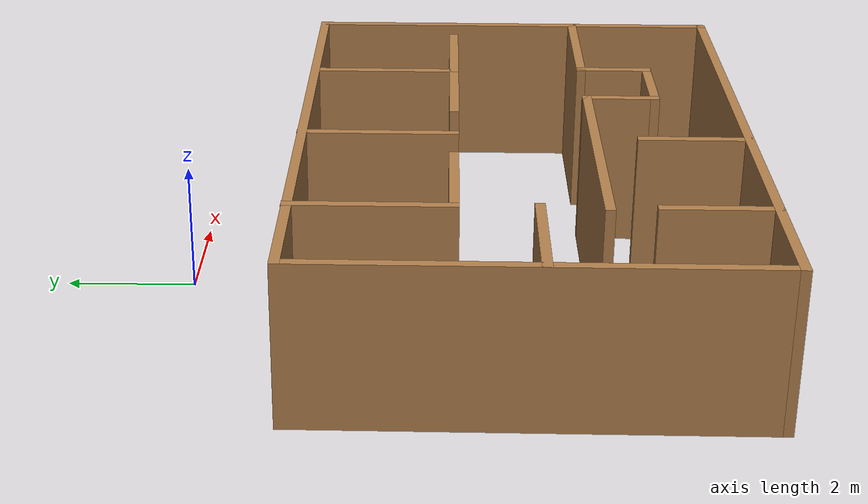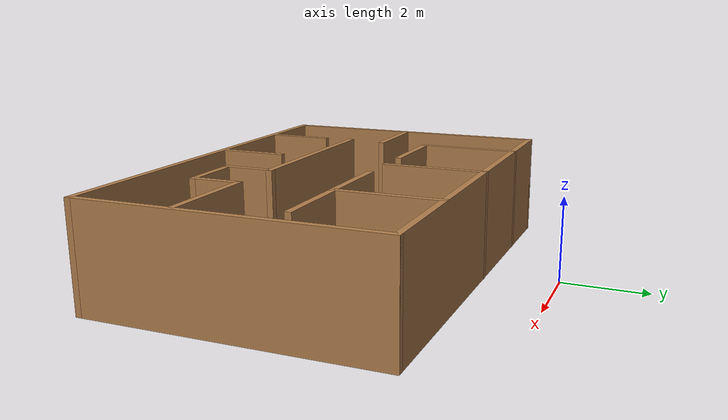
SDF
<?xml version='1.0'?>
<sdf version='1.6'>
	<model name='My_room'>
		<pose frame=''>0.775 -5.15122 0 0 -0 0</pose>
		<link name='Wall_0'>
			<collision name='Wall_0_Collision'>
				<geometry>
					<box>
						<size>10 0.15 2.5</size>
					</box>
				</geometry>
				<pose frame=''>0 0 1.25 0 -0 0</pose>
			</collision>
			<visual name='Wall_0_Visual'>
				<pose frame=''>0 0 1.25 0 -0 0</pose>
				<geometry>
					<box>
						<size>10 0.15 2.5</size>
					</box>
				</geometry>
				<material>
					<script>
						<uri>file://media/materials/scripts/gazebo.material</uri>
						<name>Gazebo/Wood</name>
					</script>
					<ambient>1 1 1 1</ambient>
				</material>
				<meta>
					<layer>0</layer>
				</meta>
			</visual>
			<pose frame=''>0 3.42122 0 0 -0 0</pose>
		</link>
		<link name='Wall_11'>
			<collision name='Wall_11_Collision'>
				<geometry>
					<box>
						<size>2 0.15 2.5</size>
					</box>
				</geometry>
				<pose frame=''>0 0 1.25 0 -0 0</pose>
			</collision>
			<visual name='Wall_11_Visual'>
				<pose frame=''>0 0 1.25 0 -0 0</pose>
				<geometry>
					<box>
						<size>2 0.15 2.5</size>
					</box>
				</geometry>
				<material>
					<script>
						<uri>file://media/materials/scripts/gazebo.material</uri>
						<name>Gazebo/Wood</name>
					</script>
					<ambient>1 1 1 1</ambient>
				</material>
				<meta>
					<layer>0</layer>
				</meta>
			</visual>
			<pose frame=''>1.50689 1.06878 0 0 -0 0</pose>
		</link>
		<link name='Wall_12'>
			<collision name='Wall_12_Collision'>
				<geometry>
					<box>
						<size>2.5 0.15 2.5</size>
					</box>
				</geometry>
				<pose frame=''>0 0 1.25 0 -0 0</pose>
			</collision>
			<visual name='Wall_12_Visual'>
				<pose frame=''>0 0 1.25 0 -0 0</pose>
				<geometry>
					<box>
						<size>2.5 0.15 2.5</size>
					</box>
				</geometry>
				<material>
					<script>
						<uri>file://media/materials/scripts/gazebo.material</uri>
						<name>Gazebo/Wood</name>
					</script>
					<ambient>1 1 1 1</ambient>
				</material>
				<meta>
					<layer>0</layer>
				</meta>
			</visual>
			<pose frame=''>2.43189 2.24378 0 0 -0 1.5708</pose>
		</link>
		<link name='Wall_16'>
			<collision name='Wall_16_Collision'>
				<geometry>
					<box>
						<size>2 0.15 2.5</size>
					</box>
				</geometry>
				<pose frame=''>0 0 1.25 0 -0 0</pose>
			</collision>
			<visual name='Wall_16_Visual'>
				<pose frame=''>0 0 1.25 0 -0 0</pose>
				<geometry>
					<box>
						<size>2 0.15 2.5</size>
					</box>
				</geometry>
				<material>
					<script>
						<uri>file://media/materials/scripts/gazebo.material</uri>
						<name>Gazebo/Wood</name>
					</script>
					<ambient>1 1 1 1</ambient>
				</material>
				<meta>
					<layer>0</layer>
				</meta>
			</visual>
			<pose frame=''>3.35689 1.06878 0 0 -0 0</pose>
		</link>
		<link name='Wall_18'>
			<collision name='Wall_18_Collision'>
				<geometry>
					<box>
						<size>2.5 0.15 2.5</size>
					</box>
				</geometry>
				<pose frame=''>0 0 1.25 0 -0 0</pose>
			</collision>
			<visual name='Wall_18_Visual'>
				<pose frame=''>0 0 1.25 0 -0 0</pose>
				<geometry>
					<box>
						<size>2.5 0.15 2.5</size>
					</box>
				</geometry>
				<material>
					<script>
						<uri>file://media/materials/scripts/gazebo.material</uri>
						<name>Gazebo/Wood</name>
					</script>
					<ambient>1 1 1 1</ambient>
				</material>
				<meta>
					<layer>0</layer>
				</meta>
			</visual>
			<pose frame=''>3.74011 -1.08337 0 0 -0 3.14159</pose>
		</link>
		<link name='Wall_19'>
			<collision name='Wall_19_Collision'>
				<geometry>
					<box>
						<size>1.25 0.15 2.5</size>
					</box>
				</geometry>
				<pose frame=''>0 0 1.25 0 -0 0</pose>
			</collision>
			<visual name='Wall_19_Visual'>
				<pose frame=''>0 0 1.25 0 -0 0</pose>
				<geometry>
					<box>
						<size>1.25 0.15 2.5</size>
					</box>
				</geometry>
				<material>
					<script>
						<uri>file://media/materials/scripts/gazebo.material</uri>
						<name>Gazebo/Wood</name>
					</script>
					<ambient>1 1 1 1</ambient>
				</material>
				<meta>
					<layer>0</layer>
				</meta>
			</visual>
			<pose frame=''>2.56511 -1.63337 0 0 -0 -1.5708</pose>
		</link>
		<link name='Wall_2'>
			<collision name='Wall_2_Collision'>
				<geometry>
					<box>
						<size>7 0.15 2.5</size>
					</box>
				</geometry>
				<pose frame=''>0 0 1.25 0 -0 0</pose>
			</collision>
			<visual name='Wall_2_Visual'>
				<pose frame=''>0 0 1.25 0 -0 0</pose>
				<geometry>
					<box>
						<size>7 0.15 2.5</size>
					</box>
				</geometry>
				<material>
					<script>
						<uri>file://media/materials/scripts/gazebo.material</uri>
						<name>Gazebo/Wood</name>
					</script>
					<ambient>1 1 1 1</ambient>
				</material>
				<meta>
					<layer>0</layer>
				</meta>
			</visual>
			<pose frame=''>4.925 -0.00378 0 0 -0 -1.5708</pose>
		</link>
		<link name='Wall_20'>
			<collision name='Wall_20_Collision'>
				<geometry>
					<box>
						<size>1.5 0.15 2.5</size>
					</box>
				</geometry>
				<pose frame=''>0 0 1.25 0 -0 0</pose>
			</collision>
			<visual name='Wall_20_Visual'>
				<pose frame=''>0 0 1.25 0 -0 0</pose>
				<geometry>
					<box>
						<size>1.5 0.15 2.5</size>
					</box>
				</geometry>
				<material>
					<script>
						<uri>file://media/materials/scripts/gazebo.material</uri>
						<name>Gazebo/Wood</name>
					</script>
					<ambient>1 1 1 1</ambient>
				</material>
				<meta>
					<layer>0</layer>
				</meta>
			</visual>
			<pose frame=''>1.89011 -2.18337 0 0 -0 3.14159</pose>
		</link>
		<link name='Wall_21'>
			<collision name='Wall_21_Collision'>
				<geometry>
					<box>
						<size>1.25 0.15 2.5</size>
					</box>
				</geometry>
				<pose frame=''>0 0 1.25 0 -0 0</pose>
			</collision>
			<visual name='Wall_21_Visual'>
				<pose frame=''>0 0 1.25 0 -0 0</pose>
				<geometry>
					<box>
						<size>1.25 0.15 2.5</size>
					</box>
				</geometry>
				<material>
					<script>
						<uri>file://media/materials/scripts/gazebo.material</uri>
						<name>Gazebo/Wood</name>
					</script>
					<ambient>1 1 1 1</ambient>
				</material>
				<meta>
					<layer>0</layer>
				</meta>
			</visual>
			<pose frame=''>1.21511 -1.63337 0 0 -0 1.5708</pose>
		</link>
		<link name='Wall_22'>
			<collision name='Wall_22_Collision'>
				<geometry>
					<box>
						<size>4.5 0.15 2.5</size>
					</box>
				</geometry>
				<pose frame=''>0 0 1.25 0 -0 0</pose>
			</collision>
			<visual name='Wall_22_Visual'>
				<pose frame=''>0 0 1.25 0 -0 0</pose>
				<geometry>
					<box>
						<size>4.5 0.15 2.5</size>
					</box>
				</geometry>
				<material>
					<script>
						<uri>file://media/materials/scripts/gazebo.material</uri>
						<name>Gazebo/Wood</name>
					</script>
					<ambient>1 1 1 1</ambient>
				</material>
				<meta>
					<layer>0</layer>
				</meta>
			</visual>
			<pose frame=''>-0.959888 -1.08337 0 0 -0 3.14159</pose>
		</link>
		<link name='Wall_24'>
			<collision name='Wall_24_Collision'>
				<geometry>
					<box>
						<size>1.75 0.15 2.5</size>
					</box>
				</geometry>
				<pose frame=''>0 0 1.25 0 -0 0</pose>
			</collision>
			<visual name='Wall_24_Visual'>
				<pose frame=''>0 0 1.25 0 -0 0</pose>
				<geometry>
					<box>
						<size>1.75 0.15 2.5</size>
					</box>
				</geometry>
				<material>
					<script>
						<uri>file://media/materials/scripts/gazebo.material</uri>
						<name>Gazebo/Wood</name>
					</script>
					<ambient>1 1 1 1</ambient>
				</material>
				<meta>
					<layer>0</layer>
				</meta>
			</visual>
			<pose frame=''>-3.08601 -2.6242 0 0 -0 1.5708</pose>
		</link>
		<link name='Wall_28'>
			<collision name='Wall_28_Collision'>
				<geometry>
					<box>
						<size>2 0.15 2.5</size>
					</box>
				</geometry>
				<pose frame=''>0 0 1.25 0 -0 0</pose>
			</collision>
			<visual name='Wall_28_Visual'>
				<pose frame=''>0 0 1.25 0 -0 0</pose>
				<geometry>
					<box>
						<size>2 0.15 2.5</size>
					</box>
				</geometry>
				<material>
					<script>
						<uri>file://media/materials/scripts/gazebo.material</uri>
						<name>Gazebo/Wood</name>
					</script>
					<ambient>1 1 1 1</ambient>
				</material>
				<meta>
					<layer>0</layer>
				</meta>
			</visual>
			<pose frame=''>-3.99929 -0.117947 0 0 -0 0</pose>
		</link>
		<link name='Wall_3'>
			<collision name='Wall_3_Collision'>
				<geometry>
					<box>
						<size>10 0.15 2.5</size>
					</box>
				</geometry>
				<pose frame=''>0 0 1.25 0 -0 0</pose>
			</collision>
			<visual name='Wall_3_Visual'>
				<pose frame=''>0 0 1.25 0 -0 0</pose>
				<geometry>
					<box>
						<size>10 0.15 2.5</size>
					</box>
				</geometry>
				<material>
					<script>
						<uri>file://media/materials/scripts/gazebo.material</uri>
						<name>Gazebo/Wood</name>
					</script>
					<ambient>1 1 1 1</ambient>
				</material>
				<meta>
					<layer>0</layer>
				</meta>
			</visual>
			<pose frame=''>0 -3.42878 0 0 -0 3.14159</pose>
		</link>
		<link name='Wall_30'>
			<collision name='Wall_30_Collision'>
				<geometry>
					<box>
						<size>1.75 0.15 2.5</size>
					</box>
				</geometry>
				<pose frame=''>0 0 1.25 0 -0 0</pose>
			</collision>
			<visual name='Wall_30_Visual'>
				<pose frame=''>0 0 1.25 0 -0 0</pose>
				<geometry>
					<box>
						<size>1.75 0.15 2.5</size>
					</box>
				</geometry>
				<material>
					<script>
						<uri>file://media/materials/scripts/gazebo.material</uri>
						<name>Gazebo/Wood</name>
					</script>
					<ambient>1 1 1 1</ambient>
				</material>
				<meta>
					<layer>0</layer>
				</meta>
			</visual>
			<pose frame=''>-0.537813 -2.60075 0 0 -0 1.5708</pose>
		</link>
		<link name='Wall_4'>
			<collision name='Wall_4_Collision'>
				<geometry>
					<box>
						<size>7 0.15 2.5</size>
					</box>
				</geometry>
				<pose frame=''>0 0 1.25 0 -0 0</pose>
			</collision>
			<visual name='Wall_4_Visual'>
				<pose frame=''>0 0 1.25 0 -0 0</pose>
				<geometry>
					<box>
						<size>7 0.15 2.5</size>
					</box>
				</geometry>
				<material>
					<script>
						<uri>file://media/materials/scripts/gazebo.material</uri>
						<name>Gazebo/Wood</name>
					</script>
					<ambient>1 1 1 1</ambient>
				</material>
				<meta>
					<layer>0</layer>
				</meta>
			</visual>
			<pose frame=''>-4.925 -0.00378 0 0 -0 1.5708</pose>
		</link>
		<link name='Wall_6'>
			<collision name='Wall_6_Collision'>
				<geometry>
					<box>
						<size>2.5 0.15 2.5</size>
					</box>
				</geometry>
				<pose frame=''>0 0 1.25 0 -0 0</pose>
			</collision>
			<visual name='Wall_6_Visual'>
				<pose frame=''>0 0 1.25 0 -0 0</pose>
				<geometry>
					<box>
						<size>2.5 0.15 2.5</size>
					</box>
				</geometry>
				<material>
					<script>
						<uri>file://media/materials/scripts/gazebo.material</uri>
						<name>Gazebo/Wood</name>
					</script>
					<ambient>1 1 1 1</ambient>
				</material>
				<meta>
					<layer>0</layer>
				</meta>
			</visual>
			<pose frame=''>-3.08811 2.25378 0 0 -0 -1.5708</pose>
		</link>
		<link name='Wall_7'>
			<collision name='Wall_7_Collision'>
				<geometry>
					<box>
						<size>2 0.15 2.5</size>
					</box>
				</geometry>
				<pose frame=''>0 0 1.25 0 -0 0</pose>
			</collision>
			<visual name='Wall_7_Visual'>
				<pose frame=''>0 0 1.25 0 -0 0</pose>
				<geometry>
					<box>
						<size>2 0.15 2.5</size>
					</box>
				</geometry>
				<material>
					<script>
						<uri>file://media/materials/scripts/gazebo.material</uri>
						<name>Gazebo/Wood</name>
					</script>
					<ambient>1 1 1 1</ambient>
				</material>
				<meta>
					<layer>0</layer>
				</meta>
			</visual>
			<pose frame=''>-2.16311 1.07878 0 0 -0 0</pose>
		</link>
		<link name='Wall_9'>
			<collision name='Wall_9_Collision'>
				<geometry>
					<box>
						<size>2.5 0.15 2.5</size>
					</box>
				</geometry>
				<pose frame=''>0 0 1.25 0 -0 0</pose>
			</collision>
			<visual name='Wall_9_Visual'>
				<pose frame=''>0 0 1.25 0 -0 0</pose>
				<geometry>
					<box>
						<size>2.5 0.15 2.5</size>
					</box>
				</geometry>
				<material>
					<script>
						<uri>file://media/materials/scripts/gazebo.material</uri>
						<name>Gazebo/Wood</name>
					</script>
					<ambient>1 1 1 1</ambient>
				</material>
				<meta>
					<layer>0</layer>
				</meta>
			</visual>
			<pose frame=''>-0.388113 2.25378 0 0 -0 -1.5708</pose>
		</link>
		<static>1</static>
	</model>
</sdf>
